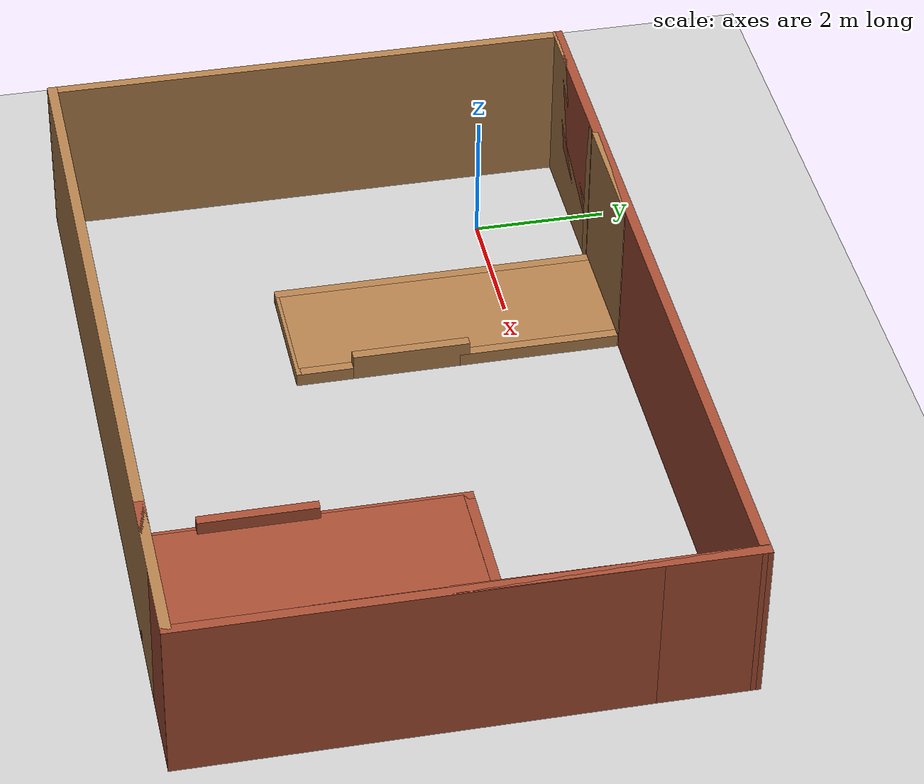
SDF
<sdf version="1.7">
 <world name="default">
  <light name="sun" type="directional">
   <pose>0 0 10 0 -0 0</pose>
   <diffuse>0.8 0.8 0.8 1</diffuse>
   <specular>0.2 0.2 0.2 1</specular>
   <attenuation>
    <range>1000</range>
    <constant>0.9</constant>
    <linear>0.01</linear>
    <quadratic>0.001</quadratic>
   </attenuation>
   <direction>-0.5 0.1 -0.9</direction>
   <spot><inner_angle>0</inner_angle><outer_angle>0</outer_angle><falloff>0</falloff></spot>
  </light>
  <model name="ground_plane">
   <static>1</static>
   <link name="link">
    <collision name="collision">
     <geometry><plane><normal>0 0 1</normal><size>100 100</size></plane></geometry>
     <surface><friction><ode><mu>100</mu><mu2>50</mu2></ode></friction></surface>
    </collision>
    <visual name="visual">
     <cast_shadows>0</cast_shadows>
     <geometry><plane><normal>0 0 1</normal><size>100 100</size></plane></geometry>
     <material>
      <script><uri>file://media/materials/scripts/gazebo.material</uri><name>Gazebo/Grey</name></script>
     </material>
    </visual>
   </link>
  </model>
  <gravity>0 0 -9.8</gravity>
  <magnetic_field>6e-06 2.3e-05 -4.2e-05</magnetic_field>
  <atmosphere type="adiabatic"/>
  <physics type="ode">
   <max_step_size>0.001</max_step_size>
   <real_time_factor>1</real_time_factor>
   <real_time_update_rate>1000</real_time_update_rate>
  </physics>
  <scene><ambient>0.4 0.4 0.4 1</ambient><background>0.7 0.7 0.7 1</background><shadows>1</shadows></scene>
  <audio><device>default</device></audio>
  <spherical_coordinates>
   <surface_model>EARTH_WGS84</surface_model>
   <latitude_deg>0</latitude_deg>
   <longitude_deg>0</longitude_deg>
   <elevation>0</elevation>
   <heading_deg>0</heading_deg>
  </spherical_coordinates>
  <model name="RMUL">
   <pose>4.5125 -1.91109 0 0 -0 0</pose>
   <link name="Wall_0">
    <collision name="Wall_0_Collision">
     <geometry><box><size>12.03 0.15 2.5</size></box></geometry>
     <pose>0 0 1.25 0 -0 0</pose>
    </collision>
    <visual name="Wall_0_Visual">
     <pose>0 0 1.25 0 -0 0</pose>
     <geometry><box><size>12.03 0.15 2.5</size></box></geometry>
     <material>
      <script><uri>file://media/materials/scripts/gazebo.material</uri><name>Gazebo/Bricks</name></script>
      <ambient>1 1 1 1</ambient>
     </material>
     <meta><layer>0</layer></meta>
    </visual>
    <pose>-0.000273 3.4625 0 0 -0 0</pose>
   </link>
   <link name="Wall_136">
    <collision name="Wall_136_Collision">
     <geometry><box><size>4.75 1.9 0.2</size></box></geometry>
     <pose>0 0 0.1 0 -0 0</pose>
    </collision>
    <visual name="Wall_136_Visual">
     <pose>0 0 0.1 0 -0 0</pose>
     <geometry><box><size>4.75 1.9 0.2</size></box></geometry>
     <material>
      <script><uri>file://media/materials/scripts/gazebo.material</uri><name>Gazebo/Bricks</name></script>
      <ambient>1 1 1 1</ambient>
     </material>
     <meta><layer>0</layer></meta>
    </visual>
    <pose>2.63823 -1.9885 0 0 -0 -1.57045</pose>
   </link>
   <link name="Wall_145">
    <collision name="Wall_145_Collision">
     <geometry><box><size>1.75 0.15 0.4</size></box></geometry>
     <pose>0 0 0.2 0 -0 0</pose>
    </collision>
    <visual name="Wall_145_Visual">
     <pose>0 0 0.2 0 -0 0</pose>
     <geometry><box><size>1.75 0.15 0.4</size></box></geometry>
     <material>
      <script><uri>file://media/materials/scripts/gazebo.material</uri><name>Gazebo/Bricks</name></script>
      <ambient>1 1 1 1</ambient>
     </material>
     <meta><layer>0</layer></meta>
    </visual>
    <pose>1.70973 -2.5535 0 0 -0 1.5708</pose>
   </link>
   <link name="Wall_147">
    <collision name="Wall_147_Collision">
     <geometry><box><size>2 0.15 2.5</size></box></geometry>
     <pose>0 0 1.25 0 -0 0</pose>
    </collision>
    <visual name="Wall_147_Visual">
     <pose>0 0 1.25 0 -0 0</pose>
     <geometry><box><size>2 0.15 2.5</size></box></geometry>
     <material>
      <script><uri>file://media/materials/scripts/gazebo.material</uri><name>Gazebo/Wood</name></script>
      <ambient>1 1 1 1</ambient>
     </material>
     <meta><layer>0</layer></meta>
    </visual>
    <pose>-2.33927 3.4495 0 0 -0 0</pose>
   </link>
   <link name="Wall_149">
    <collision name="Wall_149_Collision">
     <geometry><box><size>2 0.15 0.2</size></box></geometry>
     <pose>0 0 0.1 0 -0 0</pose>
    </collision>
    <visual name="Wall_149_Visual">
     <pose>0 0 0.1 0 -0 0</pose>
     <geometry><box><size>2 0.15 0.2</size></box></geometry>
     <material>
      <script><uri>file://media/materials/scripts/gazebo.material</uri><name>Gazebo/Wood</name></script>
      <ambient>1 1 1 1</ambient>
     </material>
     <meta><layer>0</layer></meta>
    </visual>
    <pose>-2.33927 -1.4005 0 0 -0 3.14159</pose>
   </link>
   <link name="Wall_151">
    <collision name="Wall_151_Collision">
     <geometry><box><size>4.906 1.7 0.2</size></box></geometry>
     <pose>0 0 0.1 0 -0 0</pose>
    </collision>
    <visual name="Wall_151_Visual">
     <pose>0 0 0.1 0 -0 0</pose>
     <geometry><box><size>4.906 1.7 0.2</size></box></geometry>
     <material>
      <script><uri>file://media/materials/scripts/gazebo.material</uri><name>Gazebo/Wood</name></script>
      <ambient>1 1 1 1</ambient>
     </material>
     <meta><layer>0</layer></meta>
    </visual>
    <pose>-2.33927 1.0305 0 0 -0 -1.5708</pose>
   </link>
   <link name="Wall_155">
    <collision name="Wall_155_Collision">
     <geometry><box><size>1 0.15 0.2</size></box></geometry>
     <pose>0 0 0.1 0 -0 0</pose>
    </collision>
    <visual name="Wall_155_Visual">
     <pose>0 0 0.1 0 -0 0</pose>
     <geometry><box><size>1 0.15 0.2</size></box></geometry>
     <material>
      <script><uri>file://media/materials/scripts/gazebo.material</uri><name>Gazebo/Wood</name></script>
      <ambient>1 1 1 1</ambient>
     </material>
     <meta><layer>0</layer></meta>
    </visual>
    <pose>-1.41427 -0.9755 0 0 -0 1.5708</pose>
   </link>
   <link name="Wall_157">
    <collision name="Wall_157_Collision">
     <geometry><box><size>1.75 0.15 0.4</size></box></geometry>
     <pose>0 0 0.2 0 -0 0</pose>
    </collision>
    <visual name="Wall_157_Visual">
     <pose>0 0 0.2 0 -0 0</pose>
     <geometry><box><size>1.75 0.15 0.4</size></box></geometry>
     <material>
      <script><uri>file://media/materials/scripts/gazebo.material</uri><name>Gazebo/Wood</name></script>
      <ambient>1 1 1 1</ambient>
     </material>
     <meta><layer>0</layer></meta>
    </visual>
    <pose>-1.41427 0.249501 0 0 -0 1.5708</pose>
   </link>
   <link name="Wall_160">
    <collision name="Wall_160_Collision">
     <geometry><box><size>2.55 0.15 0.2</size></box></geometry>
     <pose>0 0 0.1 0 -0 0</pose>
    </collision>
    <visual name="Wall_160_Visual">
     <pose>0 0 0.1 0 -0 0</pose>
     <geometry><box><size>2.55 0.15 0.2</size></box></geometry>
     <material>
      <script><uri>file://media/materials/scripts/gazebo.material</uri><name>Gazebo/Wood</name></script>
      <ambient>1 1 1 1</ambient>
     </material>
     <meta><layer>0</layer></meta>
    </visual>
    <pose>-1.41427 2.2495 0 0 -0 1.5708</pose>
   </link>
   <link name="Wall_2">
    <collision name="Wall_2_Collision">
     <geometry><box><size>4.25 0.15 2.5</size></box></geometry>
     <pose>0 0 1.25 0 -0 0</pose>
    </collision>
    <visual name="Wall_2_Visual">
     <pose>0 0 1.25 0 -0 0</pose>
     <geometry><box><size>4.25 0.15 2.5</size></box></geometry>
     <material>
      <script><uri>file://media/materials/scripts/gazebo.material</uri><name>Gazebo/Bricks</name></script>
      <ambient>1 1 1 1</ambient>
     </material>
     <meta><layer>0</layer></meta>
    </visual>
    <pose>5.92473 1.4125 0 0 -0 -1.57811</pose>
   </link>
   <link name="Wall_24">
    <collision name="Wall_24_Collision">
     <geometry><box><size>2.5 0.15 2.5</size></box></geometry>
     <pose>0 0 1.25 0 -0 0</pose>
    </collision>
    <visual name="Wall_24_Visual">
     <pose>0 0 1.25 0 -0 0</pose>
     <geometry><box><size>2.5 0.15 2.5</size></box></geometry>
     <material>
      <script><uri>file://media/materials/scripts/gazebo.material</uri><name>Gazebo/Wood</name></script>
      <ambient>1 1 1 1</ambient>
     </material>
     <meta><layer>0</layer></meta>
    </visual>
    <pose>-4.76527 3.4625 0 0 -0 0</pose>
   </link>
   <link name="Wall_27">
    <collision name="Wall_27_Collision">
     <geometry><box><size>2.5 0.15 2.5</size></box></geometry>
     <pose>0 0 1.25 0 -0 0</pose>
    </collision>
    <visual name="Wall_27_Visual">
     <pose>0 0 1.25 0 -0 0</pose>
     <geometry><box><size>2.5 0.15 2.5</size></box></geometry>
     <material>
      <script><uri>file://media/materials/scripts/gazebo.material</uri><name>Gazebo/Bricks</name></script>
      <ambient>1 1 1 1</ambient>
     </material>
     <meta><layer>0</layer></meta>
    </visual>
    <pose>4.73473 -4.3875 0 0 -0 3.14159</pose>
   </link>
   <link name="Wall_28">
    <collision name="Wall_28_Collision">
     <geometry><box><size>5 0.15 0.2</size></box></geometry>
     <pose>0 0 0.1 0 -0 0</pose>
    </collision>
    <visual name="Wall_28_Visual">
     <pose>0 0 0.1 0 -0 0</pose>
     <geometry><box><size>5 0.15 0.2</size></box></geometry>
     <material>
      <script><uri>file://media/materials/scripts/gazebo.material</uri><name>Gazebo/Bricks</name></script>
      <ambient>1 1 1 1</ambient>
     </material>
     <meta><layer>0</layer></meta>
    </visual>
    <pose>3.55973 -1.9625 0 0 -0 1.5708</pose>
   </link>
   <link name="Wall_33">
    <collision name="Wall_33_Collision">
     <geometry><box><size>2 0.15 0.2</size></box></geometry>
     <pose>0 0 0.1 0 -0 0</pose>
    </collision>
    <visual name="Wall_33_Visual">
     <pose>0 0 0.1 0 -0 0</pose>
     <geometry><box><size>2 0.15 0.2</size></box></geometry>
     <material>
      <script><uri>file://media/materials/scripts/gazebo.material</uri><name>Gazebo/Bricks</name></script>
      <ambient>1 1 1 1</ambient>
     </material>
     <meta><layer>0</layer></meta>
    </visual>
    <pose>2.63473 0.462501 0 0 -0 3.14159</pose>
   </link>
   <link name="Wall_34">
    <collision name="Wall_34_Collision">
     <geometry><box><size>4.75 0.15 0.2</size></box></geometry>
     <pose>0 0 0.1 0 -0 0</pose>
    </collision>
    <visual name="Wall_34_Visual">
     <pose>0 0 0.1 0 -0 0</pose>
     <geometry><box><size>4.75 0.15 0.2</size></box></geometry>
     <material>
      <script><uri>file://media/materials/scripts/gazebo.material</uri><name>Gazebo/Bricks</name></script>
      <ambient>1 1 1 1</ambient>
     </material>
     <meta><layer>0</layer></meta>
    </visual>
    <pose>1.70973 -1.8375 0 0 -0 -1.5708</pose>
   </link>
   <link name="Wall_35">
    <collision name="Wall_35_Collision">
     <geometry><box><size>0.25 0.15 0.2</size></box></geometry>
     <pose>0 0 0.1 0 -0 0</pose>
    </collision>
    <visual name="Wall_35_Visual">
     <pose>0 0 0.1 0 -0 0</pose>
     <geometry><box><size>0.25 0.15 0.2</size></box></geometry>
     <material>
      <script><uri>file://media/materials/scripts/gazebo.material</uri><name>Gazebo/Bricks</name></script>
      <ambient>1 1 1 1</ambient>
     </material>
     <meta><layer>0</layer></meta>
    </visual>
    <pose>1.70973 -4.1875 0 0 -0 -1.5708</pose>
   </link>
   <link name="Wall_4">
    <collision name="Wall_4_Collision">
     <geometry><box><size>8 0.15 2.5</size></box></geometry>
     <pose>0 0 1.25 0 -0 0</pose>
    </collision>
    <visual name="Wall_4_Visual">
     <pose>0 0 1.25 0 -0 0</pose>
     <geometry><box><size>8 0.15 2.5</size></box></geometry>
     <material>
      <script><uri>file://media/materials/scripts/gazebo.material</uri><name>Gazebo/Bricks</name></script>
      <ambient>1 1 1 1</ambient>
     </material>
     <meta><layer>0</layer></meta>
    </visual>
    <pose>5.92973 -0.4625 0 0 -0 -1.5708</pose>
   </link>
   <link name="Wall_46">
    <collision name="Wall_46_Collision">
     <geometry><box><size>0.25 0.15 2.5</size></box></geometry>
     <pose>0 0 1.25 0 -0 0</pose>
    </collision>
    <visual name="Wall_46_Visual">
     <pose>0 0 1.25 0 -0 0</pose>
     <geometry><box><size>0.25 0.15 2.5</size></box></geometry>
     <material>
      <script><uri>file://media/materials/scripts/gazebo.material</uri><name>Gazebo/Wood</name></script>
      <ambient>1 1 1 1</ambient>
     </material>
     <meta><layer>0</layer></meta>
    </visual>
    <pose>-3.54027 3.4625 0 0 -0 0</pose>
   </link>
   <link name="Wall_55">
    <collision name="Wall_55_Collision">
     <geometry><box><size>5 0.15 0.2</size></box></geometry>
     <pose>0 0 0.1 0 -0 0</pose>
    </collision>
    <visual name="Wall_55_Visual">
     <pose>0 0 0.1 0 -0 0</pose>
     <geometry><box><size>5 0.15 0.2</size></box></geometry>
     <material>
      <script><uri>file://media/materials/scripts/gazebo.material</uri><name>Gazebo/Wood</name></script>
      <ambient>1 1 1 1</ambient>
     </material>
     <meta><layer>0</layer></meta>
    </visual>
    <pose>-3.26427 1.0245 0 0 -0 -1.5708</pose>
   </link>
   <link name="Wall_6">
    <collision name="Wall_6_Collision">
     <geometry><box><size>8 0.15 2.5</size></box></geometry>
     <pose>0 0 1.25 0 -0 0</pose>
    </collision>
    <visual name="Wall_6_Visual">
     <pose>0 0 1.25 0 -0 0</pose>
     <geometry><box><size>8 0.15 2.5</size></box></geometry>
     <material>
      <script><uri>file://media/materials/scripts/gazebo.material</uri><name>Gazebo/Wood</name></script>
      <ambient>1 1 1 1</ambient>
     </material>
     <meta><layer>0</layer></meta>
    </visual>
    <pose>-5.94027 -0.4625 0 0 -0 -1.5708</pose>
   </link>
   <link name="Wall_7">
    <collision name="Wall_7_Collision">
     <geometry><box><size>12 0.15 2.5</size></box></geometry>
     <pose>0 0 1.25 0 -0 0</pose>
    </collision>
    <visual name="Wall_7_Visual">
     <pose>0 0 1.25 0 -0 0</pose>
     <geometry><box><size>12 0.15 2.5</size></box></geometry>
     <material>
      <script><uri>file://media/materials/scripts/gazebo.material</uri><name>Gazebo/Wood</name></script>
      <ambient>1 1 1 1</ambient>
     </material>
     <meta><layer>0</layer></meta>
    </visual>
    <pose>-0.015273 -4.3875 0 0 -0 0</pose>
   </link>
   <static>1</static>
  </model>
 </world>
</sdf>
